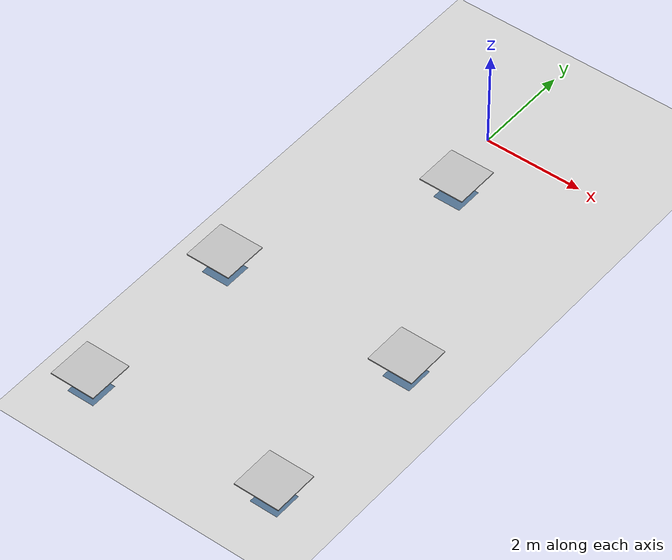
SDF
<sdf version="1.8">
 <world name="empty">
  <physics name="1ms" type="ignored">
   <max_step_size>0.001</max_step_size>
   <real_time_factor>1</real_time_factor>
   <real_time_update_rate>1000</real_time_update_rate>
  </physics>
  <plugin name="gz::sim::systems::Physics" filename="gz-sim-physics-system"/>
  <plugin name="gz::sim::systems::UserCommands" filename="gz-sim-user-commands-system"/>
  <plugin name="gz::sim::systems::SceneBroadcaster" filename="gz-sim-scene-broadcaster-system"/>
  <plugin name="gz::sim::systems::Contact" filename="gz-sim-contact-system"/>
  <gravity>0 0 -9.8000000000000007</gravity>
  <magnetic_field>5.5644999999999998e-06 2.2875799999999999e-05 -4.2388400000000002e-05</magnetic_field>
  <atmosphere type="adiabatic"/>
  <scene>
   <ambient>0.400000006 0.400000006 0.400000006 1</ambient>
   <background>0.699999988 0.699999988 0.699999988 1</background>
   <shadows>true</shadows>
  </scene>
  <light name="sun" type="directional">
   <pose>0 0 10 0 -0 0</pose>
   <diffuse>0.8 0.8 0.8 1</diffuse>
   <specular>0.2 0.2 0.2 1</specular>
   <attenuation>
    <range>1000</range>
    <constant>0.9</constant>
    <linear>0.01</linear>
    <quadratic>0.001</quadratic>
   </attenuation>
   <direction>0 0.5 -0.9</direction>
  </light>
  <light name="point_light" type="point">
   <pose>0 -0.377195 6.59868 0 -0 0</pose>
   <diffuse>0.784314 0.784314 0.784314 1</diffuse>
   <specular>0.0980392 0.0980392 0.0980392 1</specular>
   <attenuation>
    <range>50</range>
    <constant>0.8</constant>
    <linear>0</linear>
    <quadratic>0.001</quadratic>
   </attenuation>
   <cast_shadows>0</cast_shadows>
   <direction>0 0 -1</direction>
  </light>
  <include><uri>model://ground_plane</uri></include>
  <include><name>table1</name><pose>0.5 -1.6 0.2 0 0 0</pose><uri>model://cafe_table</uri></include>
  <include><name>table2</name><pose>2.4 -5.5 0.2 0 0 0</pose><uri>model://cafe_table</uri></include>
  <include><name>table3</name><pose>-1.5 -5.5 0.2 0 0 0</pose><uri>model://cafe_table</uri></include>
  <include><name>table4</name><pose>2.4 -9 0.2 0 0 0</pose><uri>model://cafe_table</uri></include>
  <include><name>table5</name><pose>-1.5 -9 0.2 0 0 0</pose><uri>model://cafe_table</uri></include>
 </world>
</sdf>

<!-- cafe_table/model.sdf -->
<sdf version="1.5">
  <model name="cafe_table">
    <static>true</static>
    <link name="link">
      <collision name="surface">
        <pose>0 0 0.45 0 0 0</pose>
        <geometry>
          <box>
            <size>0.913 0.913 0.035</size>
          </box>
        </geometry>
      </collision>

      <collision name="column">
        <pose>0 0 0.37 0 0 0</pose>
        <geometry>
          <box>
            <size>0.042 0.042 0.15</size>
          </box>
        </geometry>
      </collision>

      <collision name="base">
        <pose>0 0 0.02 0 0 0</pose>
        <geometry>
          <box>
            <size>0.56 0.56 0.04</size>
          </box>
        </geometry>
      </collision>

      <visual name="visual">
        <geometry>
          <mesh>
            <scale>1 1 0.6</scale>
            <uri>file://isr-testbed/cafe_table/meshes/cafe_table.dae</uri>
          </mesh>
        </geometry>
      </visual>
    </link>
  </model>
</sdf>
